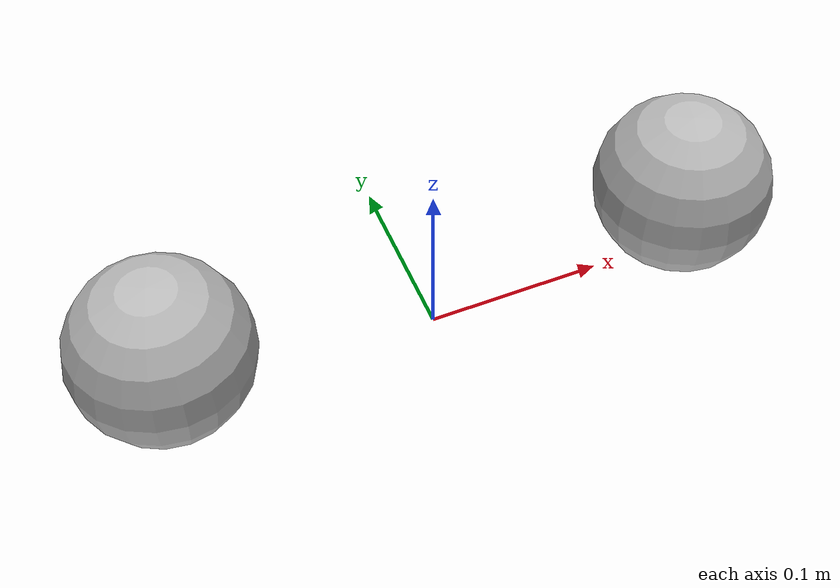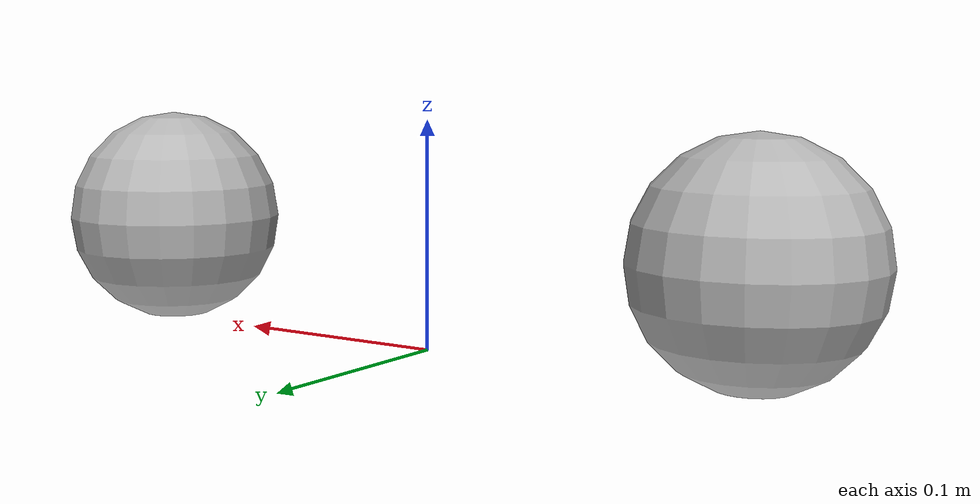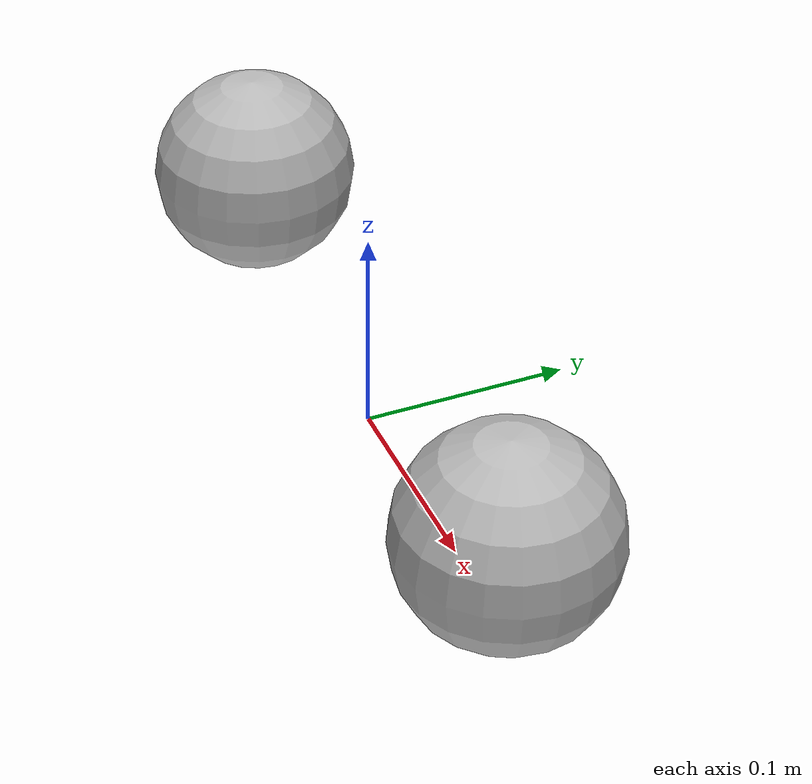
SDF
<?xml version='1.0'?>

<sdf version='1.4'>

	<model name="robotros_test">

		<static>false</static>

		<link name='chassis'>
			<pose>0 0 0.1 0 0 0</pose>

			<inertial>
				<mass>10.0</mass>
				<pose>0.0 0 0.1 0 0 0</pose>
				<inertia>
					<ixx>0.5</ixx>
					<iyy>1.0</iyy>
					<izz>0.1</izz>
				</inertia>
			</inertial>
			<collision name='collision'>
				<geometry>
					<box>
						<size>.4 .2 .1</size>
					</box>
				</geometry>
			</collision>

			<visual name='visual'>
				<pose>0 0 0.0 0 0 0</pose>
				<geometry>
					<box>
						<size>.4 .2 .1</size>
					</box>
				</geometry>
				<material> <!-- material -->
					<ambient>255 0 0 1</ambient>
					<diffuse>255 0 0 1</diffuse>
					<specular>0 0 0 0</specular>
					<emissive>0 0 0 1</emissive>
				</material> <!--material -->
			</visual>

			<collision name='caster1_collision'>
				<pose>-0.15 0 -0.05 0 0 0</pose>
				<geometry>
					<sphere>
						<radius>.05</radius>
					</sphere>
				</geometry>

				<surface>
					<friction>
						<ode>
							<mu>0</mu>
							<mu2>0</mu2>
							<slip1>1.0</slip1>
							<slip2>1.0</slip2>
						</ode>
					</friction>
				</surface>
			</collision>

			<visual name='caster1_visual'>
				<pose>-0.15 0 -0.05 0 0 0</pose>
				<geometry>
					<sphere>
						<radius>.05</radius>
					</sphere>
				</geometry>
			</visual>

			<collision name='caster2_collision'>
				<pose>0.15 0 -0.05 0 0 0</pose>
				<geometry>
					<sphere>
						<radius>.05</radius>
					</sphere>
				</geometry>

				<surface>
					<friction>
						<ode>
							<mu>0</mu>
							<mu2>0</mu2>
							<slip1>1.0</slip1>
							<slip2>1.0</slip2>
						</ode>
					</friction>
				</surface>
			</collision>

			<visual name='caster2_visual'>
				<pose>0.15 0 -0.05 0 0 0</pose>
				<geometry>
					<sphere>
						<radius>.05</radius>
					</sphere>
				</geometry>
			</visual>
		</link>

		<link name="left_wheel">
			<pose>0 0.13 0.1 0 1.5707 1.5707</pose>
			<collision name="collision">
				<geometry>
					<cylinder>
						<radius>.1</radius>
						<length>.05</length>
					</cylinder>
				</geometry>
			</collision>
			<visual name="visual">
				<geometry>
					<cylinder>
						<radius>.1</radius>
						<length>.05</length>
					</cylinder>
				</geometry>
				<material> <!-- material -->
					<ambient>37 90 201 1</ambient>
					<diffuse>37 90 201 1</diffuse>
					<specular>0 0 0 0</specular>
					<emissive>0 0 0 1</emissive>
				</material> <!--material -->
			</visual>
		</link>

		<link name="right_wheel">
			<pose>0 -0.13 0.1 0 1.5707 1.5707</pose>
			<collision name="collision">
				<geometry>
					<cylinder>
						<radius>.1</radius>
						<length>.05</length>
					</cylinder>
				</geometry>
			</collision>
			<visual name="visual">
				<geometry>
					<cylinder>
						<radius>.1</radius>
						<length>.05</length>
					</cylinder>
				</geometry>
				<material> <!-- material -->
					<ambient>37 90 201 1</ambient>
					<diffuse>37 90 201 1</diffuse>
					<specular>0 0 0 0</specular>
					<emissive>0 0 0 1</emissive>
				</material> <!--material -->
			</visual>
		</link>

		<link name="lidar_link">
			<pose>0 0 0.185 0 0 0</pose>

			<collision name="collision">
				<geometry>
					<cylinder>
						<radius>0.0325</radius>
						<length>0.070</length>
					</cylinder>
				</geometry>
			</collision>

			<visual name="visual">
				<geometry>
					<cylinder>
						<radius>0.0325</radius>
						<length>0.070</length>
					</cylinder>
				</geometry>
				<material> <!-- material -->
					<ambient>35 230 106 1</ambient>
					<diffuse>35 230 106 1</diffuse>
					<specular>0 0 0 0</specular>
					<emissive>0 0 0 1</emissive>
				</material> <!--material -->
			</visual>

			<sensor type="gpu_ray" name="head_hokuyo_sensor">
				<pose>0 0 0.020 0 0 0</pose>
				<visualize>false</visualize>
				<update_rate>40</update_rate>
				<ray>
					<scan>
						<horizontal>
							<samples>720</samples>
							<resolution>1</resolution>
							<min_angle>-3.14159</min_angle>
							<max_angle>3.14159</max_angle>
						</horizontal>
					</scan>
					<range>
						<min>0.10</min>
						<max>12.0</max>
						<resolution>0.01</resolution>
					</range>
					<noise>
						<type>gaussian</type>
						<mean>0.0</mean>
						<stddev>0.01</stddev>
					</noise>
				</ray>
				<plugin name="gazebo_ros_head_hokuyo_controller" filename="libgazebo_ros_gpu_laser.so">
					<topicName>/laser/scan</topicName>
					<frameName>lidar_link</frameName>
				</plugin>
			</sensor>
		</link>

		<link name="imu_link">
			<pose>0.100 0 0.155 0 0 0</pose> <!--Gap of 2mm-->

			<collision name="collision">
				<geometry>
					<box>
						<size>0.01 0.01 0.01</size>
					</box>
				</geometry>
			</collision>

			<visual name="visual">
				<geometry>
					<box>
						<size>0.01 0.01 0.01</size>
					</box>
				</geometry>
				<material> <!-- material -->
					<ambient>35 230 106 1</ambient>
					<diffuse>35 230 106 1</diffuse>
					<specular>0 0 0 0</specular>
					<emissive>0 0 0 1</emissive>
				</material> <!--material -->
			</visual>

			<gravity>true</gravity>
			<sensor name="imu_sensor" type="imu">
				<always_on>true</always_on>
				<update_rate>100</update_rate>
				<visualize>true</visualize>
				<topic>__default_topic__</topic>
				<plugin filename="libgazebo_ros_imu_sensor.so" name="imu_plugin">
					<topicName>imu</topicName>
					<bodyName>imu_link</bodyName>
					<updateRateHZ>10</updateRateHZ>
					<gaussianNoise>0</gaussianNoise>
					<xyzOffset>0 0 0</xyzOffset>
					<rpyOffset>0 0 0</rpyOffset>
					<frameName>imu_link</frameName>
					<initialOrientationAsReference>false</initialOrientationAsReference>
				</plugin>
				<pose>0 0 0 0 0 0</pose>
			</sensor>
		</link>

		<joint type="revolute" name="left_wheel_hinge">
			<pose>0 0 -0.03 0 0 0</pose>
			<child>left_wheel</child>
			<parent>chassis</parent>
			<axis>
				<xyz>0 1 0</xyz>
			</axis>
		</joint>

		<joint type="revolute" name="right_wheel_hinge">
			<pose>0 0 0.03 0 0 0</pose>
			<child>right_wheel</child>
			<parent>chassis</parent>
			<axis>
				<xyz>0 1 0</xyz>
			</axis>
		</joint>

		<joint type="fixed" name="lidar_joint">
			<pose>0 0 -0.025 0 0 0</pose>
			<child>lidar_link</child>
			<parent>chassis</parent>
			<axis>
				<xyz>0 0 1</xyz> <!-- what axis that it going to rotate about-->
			</axis>
		</joint>

		<joint type="fixed" name="imu_joint">
			<pose>0 0 -0.005 0 0 0</pose>
			<child>imu_link</child>
			<parent>chassis</parent>
			<axis>
				<xyz>0 0 1</xyz> <!-- what axis that it going to rotate about-->
			</axis>
		</joint>

		<plugin name="differential_drive_controller" filename="libgazebo_ros_diff_drive.so">
			<alwaysOn>true</alwaysOn>

			<!-- Plugin update rate in Hz -->
			<updateRate>20</updateRate>

			<!-- Name of left joint, defaults to `left_joint` -->
			<leftJoint>left_wheel_hinge</leftJoint>

			<!-- Name of right joint, defaults to `right_joint` -->
			<rightJoint>right_wheel_hinge</rightJoint>

			<!-- The distance from the center of one wheel to the other, in meters, defaults to 0.34 m -->
			<wheelSeparation>0.26</wheelSeparation>

			<!-- Diameter of the wheels, in meters, defaults to 0.15 m -->
			<wheelDiameter>0.2</wheelDiameter>

			<!-- Wheel acceleration, in rad/s^2, defaults to 0.0 rad/s^2 -->
			<wheelAcceleration>0</wheelAcceleration>

			<!-- Maximum torque which the wheels can produce, in Nm, defaults to 5 Nm -->
			<wheelTorque>5</wheelTorque>

			<!-- Topic to receive geometry_msgs/Twist message commands, defaults to `cmd_vel` -->
			<commandTopic>cmd_vel</commandTopic>

			<!-- Topic to publish nav_msgs/Odometry messages, defaults to `odom` -->
			<odometryTopic>odom</odometryTopic>

			<!-- Odometry frame, defaults to `odom` -->
			<odometryFrame>odom</odometryFrame>

			<!-- Robot frame to calculate odometry from, defaults to `base_footprint` -->
			<robotBaseFrame>chassis</robotBaseFrame>

			<!-- Odometry source, encoder, world, defaults to world -->
			<odometrySource>encoder</odometrySource>

			<!-- Set to true to publish transforms for the wheel links, defaults to false -->
			<publishWheelTF>false</publishWheelTF><!--true-->

			<!-- Set to true to publish transforms for the odometry, defaults to true -->
			<publishOdometry>false</publishOdometry><!--true-->

			<publishOdomTF>false</publishOdomTF> <!--true-->
			<!-- Set to true to publish sensor_msgs/JointState on /joint_states for the wheel joints, defaults to false -->
			<publishWheelJointState>false</publishWheelJointState>

			<!-- Set to true to swap right and left wheels, defaults to true -->
			<legacyMode>false</legacyMode>

			<publishTf>1</publishTf>
		</plugin>

		<plugin name="p3d_base_controller" filename="libgazebo_ros_p3d.so">
			<alwaysOn>true</alwaysOn>
			<updateRate>20</updateRate>
			<bodyName>chassis</bodyName>
			<topicName>ground_truth/state</topicName>
			<gaussianNoise>0</gaussianNoise>
			<frameName>map</frameName>
			<xyzOffsets>0 0 0</xyzOffsets>
			<rpyOffsets>0 0 0</rpyOffsets>
		</plugin>
	</model>
</sdf>
